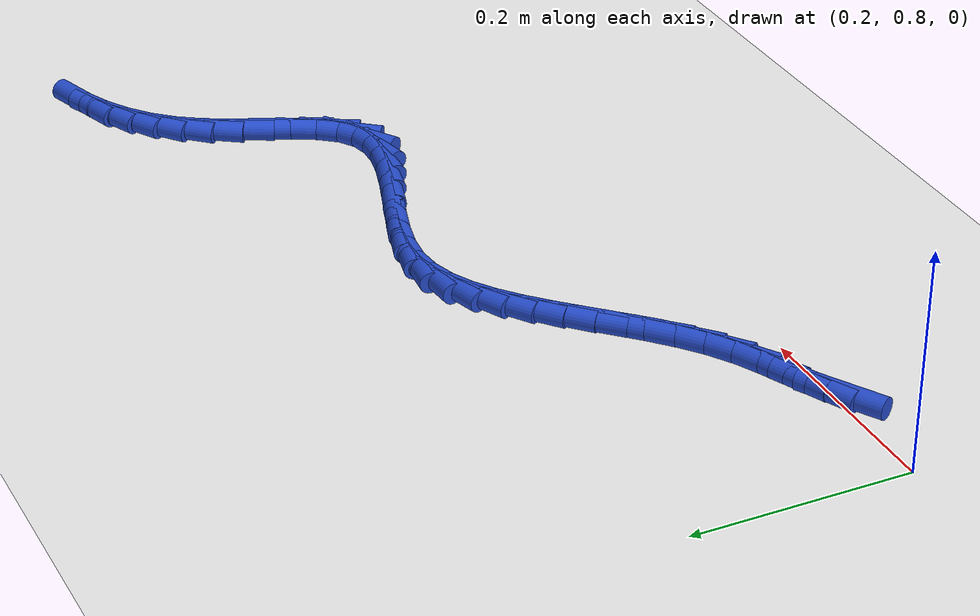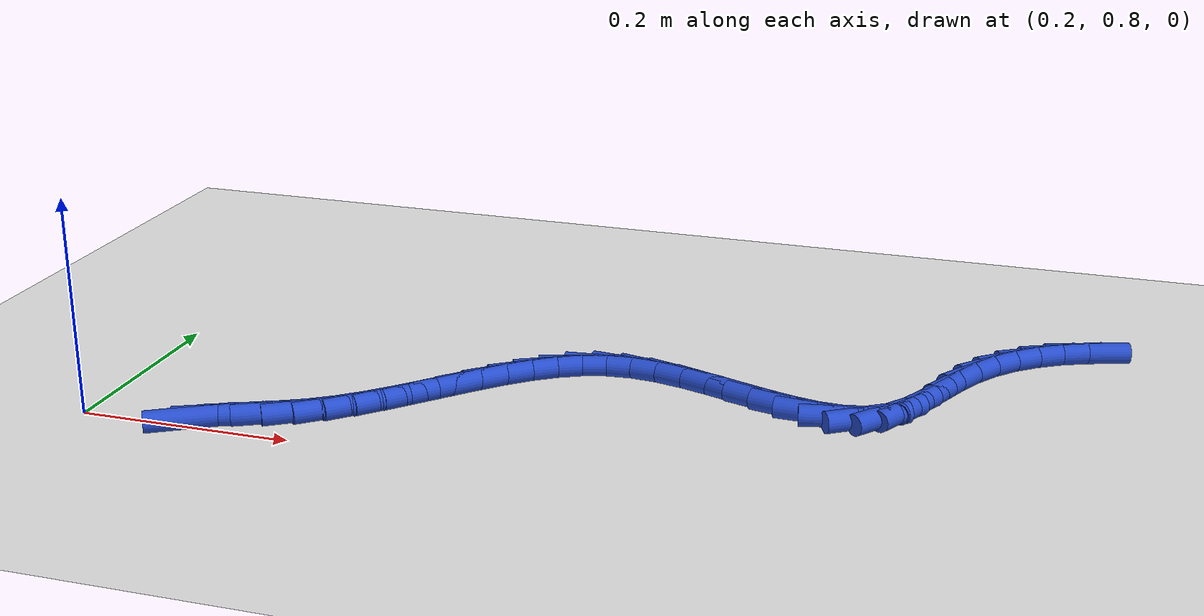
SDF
<sdf version="1.6">
 <world name="default">
  <model name="ground_plane">
   <static>1</static>
   <link name="link">
    <collision name="collision">
     <geometry><plane><normal>0 0 1</normal><size>100 100</size></plane></geometry>
     <surface><friction><ode><mu>100</mu><mu2>50</mu2></ode></friction></surface>
    </collision>
    <visual name="visual">
     <cast_shadows>0</cast_shadows>
     <geometry><plane><normal>0 0 1</normal><size>100 100</size></plane></geometry>
     <material>
      <script><uri>file://media/materials/scripts/gazebo.material</uri><name>Gazebo/WhiteGlow</name></script>
     </material>
    </visual>
   </link>
  </model>
  <model name="line">
   <link name="link_34">
    <pose>0.3070105245471767 0.7990183306296086 0.01 0 1.57 0.5382947942533804</pose>
    <collision name="collision">
     <geometry><cylinder><radius>0.01</radius><length>0.08</length></cylinder></geometry>
    </collision>
    <visual name="visual">
     <material>
      <script><name>Gazebo/Blue</name><uri>file://media/materials/scripts/gazebo.material</uri></script>
     </material>
     <geometry><cylinder><radius>0.01</radius><length>0.08</length></cylinder></geometry>
    </visual>
   </link>
   <link name="link_35">
    <pose>0.32791731947973674 0.8115020721369399 0.01 0 1.57 0.43880305395550334</pose>
    <collision name="collision">
     <geometry><cylinder><radius>0.01</radius><length>0.08</length></cylinder></geometry>
    </collision>
    <visual name="visual">
     <material>
      <script><name>Gazebo/Blue</name><uri>file://media/materials/scripts/gazebo.material</uri></script>
     </material>
     <geometry><cylinder><radius>0.01</radius><length>0.08</length></cylinder></geometry>
    </visual>
   </link>
   <link name="link_36">
    <pose>0.35064404672669786 0.8221681597628778 0.01 0 1.57 0.4179271606563806</pose>
    <collision name="collision">
     <geometry><cylinder><radius>0.01</radius><length>0.08</length></cylinder></geometry>
    </collision>
    <visual name="visual">
     <material>
      <script><name>Gazebo/Blue</name><uri>file://media/materials/scripts/gazebo.material</uri></script>
     </material>
     <geometry><cylinder><radius>0.01</radius><length>0.08</length></cylinder></geometry>
    </visual>
   </link>
   <link name="link_37">
    <pose>0.37413396841889707 0.8325997667291463 0.01 0 1.57 0.4708246415328438</pose>
    <collision name="collision">
     <geometry><cylinder><radius>0.01</radius><length>0.08</length></cylinder></geometry>
    </collision>
    <visual name="visual">
     <material>
      <script><name>Gazebo/Blue</name><uri>file://media/materials/scripts/gazebo.material</uri></script>
     </material>
     <geometry><cylinder><radius>0.01</radius><length>0.08</length></cylinder></geometry>
    </visual>
   </link>
   <link name="link_38">
    <pose>0.39731648077785475 0.8443997525790474 0.01 0 1.57 0.5822093859039558</pose>
    <collision name="collision">
     <geometry><cylinder><radius>0.01</radius><length>0.08</length></cylinder></geometry>
    </collision>
    <visual name="visual">
     <material>
      <script><name>Gazebo/Blue</name><uri>file://media/materials/scripts/gazebo.material</uri></script>
     </material>
     <geometry><cylinder><radius>0.01</radius><length>0.08</length></cylinder></geometry>
    </visual>
   </link>
   <link name="link_39">
    <pose>0.41929680986111373 0.8588700799174293 0.01 0 1.57 0.6832533506091669</pose>
    <collision name="collision">
     <geometry><cylinder><radius>0.01</radius><length>0.08</length></cylinder></geometry>
    </collision>
    <visual name="visual">
     <material>
      <script><name>Gazebo/Blue</name><uri>file://media/materials/scripts/gazebo.material</uri></script>
     </material>
     <geometry><cylinder><radius>0.01</radius><length>0.08</length></cylinder></geometry>
    </visual>
   </link>
   <link name="link_40">
    <pose>0.44007369854116846 0.8757836393772874 0.01 0 1.57 0.7539764289823443</pose>
    <collision name="collision">
     <geometry><cylinder><radius>0.01</radius><length>0.08</length></cylinder></geometry>
    </collision>
    <visual name="visual">
     <material>
      <script><name>Gazebo/Blue</name><uri>file://media/materials/scripts/gazebo.material</uri></script>
     </material>
     <geometry><cylinder><radius>0.01</radius><length>0.08</length></cylinder></geometry>
    </visual>
   </link>
   <link name="link_41">
    <pose>0.4599290167788269 0.8944288072680271 0.01 0 1.57 0.7969516579210766</pose>
    <collision name="collision">
     <geometry><cylinder><radius>0.01</radius><length>0.08</length></cylinder></geometry>
    </collision>
    <visual name="visual">
     <material>
      <script><name>Gazebo/Blue</name><uri>file://media/materials/scripts/gazebo.material</uri></script>
     </material>
     <geometry><cylinder><radius>0.01</radius><length>0.08</length></cylinder></geometry>
    </visual>
   </link>
   <link name="link_42">
    <pose>0.47914474778315613 0.9140937660977345 0.01 0 1.57 0.8140993935547778</pose>
    <collision name="collision">
     <geometry><cylinder><radius>0.01</radius><length>0.08</length></cylinder></geometry>
    </collision>
    <visual name="visual">
     <material>
      <script><name>Gazebo/Blue</name><uri>file://media/materials/scripts/gazebo.material</uri></script>
     </material>
     <geometry><cylinder><radius>0.01</radius><length>0.08</length></cylinder></geometry>
    </visual>
   </link>
   <link name="link_43">
    <pose>0.4980028747632227 0.9340666983744943 0.01 0 1.57 0.8059050501442396</pose>
    <collision name="collision">
     <geometry><cylinder><radius>0.01</radius><length>0.08</length></cylinder></geometry>
    </collision>
    <visual name="visual">
     <material>
      <script><name>Gazebo/Blue</name><uri>file://media/materials/scripts/gazebo.material</uri></script>
     </material>
     <geometry><cylinder><radius>0.01</radius><length>0.08</length></cylinder></geometry>
    </visual>
   </link>
   <link name="link_44">
    <pose>0.5167853809280936 0.9536357866063925 0.01 0 1.57 0.7710986829664985</pose>
    <collision name="collision">
     <geometry><cylinder><radius>0.01</radius><length>0.08</length></cylinder></geometry>
    </collision>
    <visual name="visual">
     <material>
      <script><name>Gazebo/Blue</name><uri>file://media/materials/scripts/gazebo.material</uri></script>
     </material>
     <geometry><cylinder><radius>0.01</radius><length>0.08</length></cylinder></geometry>
    </visual>
   </link>
   <link name="link_45">
    <pose>0.5357742494868358 0.9720892133015147 0.01 0 1.57 0.706586211054229</pose>
    <collision name="collision">
     <geometry><cylinder><radius>0.01</radius><length>0.08</length></cylinder></geometry>
    </collision>
    <visual name="visual">
     <material>
      <script><name>Gazebo/Blue</name><uri>file://media/materials/scripts/gazebo.material</uri></script>
     </material>
     <geometry><cylinder><radius>0.01</radius><length>0.08</length></cylinder></geometry>
    </visual>
   </link>
   <link name="link_46">
    <pose>0.5552514636485159 0.9887151609679462 0.01 0 1.57 0.6078487183160051</pose>
    <collision name="collision">
     <geometry><cylinder><radius>0.01</radius><length>0.08</length></cylinder></geometry>
    </collision>
    <visual name="visual">
     <material>
      <script><name>Gazebo/Blue</name><uri>file://media/materials/scripts/gazebo.material</uri></script>
     </material>
     <geometry><cylinder><radius>0.01</radius><length>0.08</length></cylinder></geometry>
    </visual>
   </link>
   <link name="link_47">
    <pose>0.5754990066222009 1.002801812113773 0.01 0 1.57 0.47059458351835903</pose>
    <collision name="collision">
     <geometry><cylinder><radius>0.01</radius><length>0.08</length></cylinder></geometry>
    </collision>
    <visual name="visual">
     <material>
      <script><name>Gazebo/Blue</name><uri>file://media/materials/scripts/gazebo.material</uri></script>
     </material>
     <geometry><cylinder><radius>0.01</radius><length>0.08</length></cylinder></geometry>
    </visual>
   </link>
   <link name="link_48">
    <pose>0.5967988616169575 1.01363734924708 0.01 0 1.57 0.2947917670698464</pose>
    <collision name="collision">
     <geometry><cylinder><radius>0.01</radius><length>0.08</length></cylinder></geometry>
    </collision>
    <visual name="visual">
     <material>
      <script><name>Gazebo/Blue</name><uri>file://media/materials/scripts/gazebo.material</uri></script>
     </material>
     <geometry><cylinder><radius>0.01</radius><length>0.08</length></cylinder></geometry>
    </visual>
   </link>
   <link name="link_49">
    <pose>0.6194330118418525 1.020509954875953 0.01 0 1.57 0.09048260221825627</pose>
    <collision name="collision">
     <geometry><cylinder><radius>0.01</radius><length>0.08</length></cylinder></geometry>
    </collision>
    <visual name="visual">
     <material>
      <script><name>Gazebo/Blue</name><uri>file://media/materials/scripts/gazebo.material</uri></script>
     </material>
     <geometry><cylinder><radius>0.01</radius><length>0.08</length></cylinder></geometry>
    </visual>
   </link>
   <link name="link_50">
    <pose>0.6436824839115431 1.022710117809935 0.01 0 1.57 -0.10090945656496318</pose>
    <collision name="collision">
     <geometry><cylinder><radius>0.01</radius><length>0.08</length></cylinder></geometry>
    </collision>
    <visual name="visual">
     <material>
      <script><name>Gazebo/Blue</name><uri>file://media/materials/scripts/gazebo.material</uri></script>
     </material>
     <geometry><cylinder><radius>0.01</radius><length>0.08</length></cylinder></geometry>
    </visual>
   </link>
   <link name="link_51">
    <pose>0.6695969153876722 1.0200861943360138 0.01 0 1.57 -0.22910706704701023</pose>
    <collision name="collision">
     <geometry><cylinder><radius>0.01</radius><length>0.08</length></cylinder></geometry>
    </collision>
    <visual name="visual">
     <material>
      <script><name>Gazebo/Blue</name><uri>file://media/materials/scripts/gazebo.material</uri></script>
     </material>
     <geometry><cylinder><radius>0.01</radius><length>0.08</length></cylinder></geometry>
    </visual>
   </link>
   <link name="link_52">
    <pose>0.6966948825329233 1.0137669030718892 0.01 0 1.57 -0.3042871475545219</pose>
    <collision name="collision">
     <geometry><cylinder><radius>0.01</radius><length>0.08</length></cylinder></geometry>
    </collision>
    <visual name="visual">
     <material>
      <script><name>Gazebo/Blue</name><uri>file://media/materials/scripts/gazebo.material</uri></script>
     </material>
     <geometry><cylinder><radius>0.01</radius><length>0.08</length></cylinder></geometry>
    </visual>
   </link>
   <link name="link_53">
    <pose>0.7244207541022027 1.0050598732389897 0.01 0 1.57 -0.33852561083776095</pose>
    <collision name="collision">
     <geometry><cylinder><radius>0.01</radius><length>0.08</length></cylinder></geometry>
    </collision>
    <visual name="visual">
     <material>
      <script><name>Gazebo/Blue</name><uri>file://media/materials/scripts/gazebo.material</uri></script>
     </material>
     <geometry><cylinder><radius>0.01</radius><length>0.08</length></cylinder></geometry>
    </visual>
   </link>
   <link name="link_54">
    <pose>0.7522188988504166 0.9952727340587431 0.01 0 1.57 -0.3366566843344308</pose>
    <collision name="collision">
     <geometry><cylinder><radius>0.01</radius><length>0.08</length></cylinder></geometry>
    </collision>
    <visual name="visual">
     <material>
      <script><name>Gazebo/Blue</name><uri>file://media/materials/scripts/gazebo.material</uri></script>
     </material>
     <geometry><cylinder><radius>0.01</radius><length>0.08</length></cylinder></geometry>
    </visual>
   </link>
   <link name="link_55">
    <pose>0.7795336855324717 0.9857131147525774 0.01 0 1.57 -0.29639801965976714</pose>
    <collision name="collision">
     <geometry><cylinder><radius>0.01</radius><length>0.08</length></cylinder></geometry>
    </collision>
    <visual name="visual">
     <material>
      <script><name>Gazebo/Blue</name><uri>file://media/materials/scripts/gazebo.material</uri></script>
     </material>
     <geometry><cylinder><radius>0.01</radius><length>0.08</length></cylinder></geometry>
    </visual>
   </link>
   <link name="link_56">
    <pose>0.8058094829032749 0.9776886445419211 0.01 0 1.57 -0.20693960312782025</pose>
    <collision name="collision">
     <geometry><cylinder><radius>0.01</radius><length>0.08</length></cylinder></geometry>
    </collision>
    <visual name="visual">
     <material>
      <script><name>Gazebo/Blue</name><uri>file://media/materials/scripts/gazebo.material</uri></script>
     </material>
     <geometry><cylinder><radius>0.01</radius><length>0.08</length></cylinder></geometry>
    </visual>
   </link>
   <link name="link_57">
    <pose>0.8304906597177322 0.9725069526482022 0.01 0 1.57 -0.045740024165443136</pose>
    <collision name="collision">
     <geometry><cylinder><radius>0.01</radius><length>0.08</length></cylinder></geometry>
    </collision>
    <visual name="visual">
     <material>
      <script><name>Gazebo/Blue</name><uri>file://media/materials/scripts/gazebo.material</uri></script>
     </material>
     <geometry><cylinder><radius>0.01</radius><length>0.08</length></cylinder></geometry>
    </visual>
   </link>
   <link name="link_58">
    <pose>0.8530215847307502 0.971475668292849 0.01 0 1.57 0.2196871473846764</pose>
    <collision name="collision">
     <geometry><cylinder><radius>0.01</radius><length>0.08</length></cylinder></geometry>
    </collision>
    <visual name="visual">
     <material>
      <script><name>Gazebo/Blue</name><uri>file://media/materials/scripts/gazebo.material</uri></script>
     </material>
     <geometry><cylinder><radius>0.01</radius><length>0.08</length></cylinder></geometry>
    </visual>
   </link>
   <link name="link_59">
    <pose>0.8728466266972352 0.9759024206972896 0.01 0 1.57 0.5904128418060222</pose>
    <collision name="collision">
     <geometry><cylinder><radius>0.01</radius><length>0.08</length></cylinder></geometry>
    </collision>
    <visual name="visual">
     <material>
      <script><name>Gazebo/Blue</name><uri>file://media/materials/scripts/gazebo.material</uri></script>
     </material>
     <geometry><cylinder><radius>0.01</radius><length>0.08</length></cylinder></geometry>
    </visual>
   </link>
   <link name="link_60">
    <pose>0.8894455877368677 0.9870262763817774 0.01 0 1.57 0.9096011142544163</pose>
    <collision name="collision">
     <geometry><cylinder><radius>0.01</radius><length>0.08</length></cylinder></geometry>
    </collision>
    <visual name="visual">
     <material>
      <script><name>Gazebo/Blue</name><uri>file://media/materials/scripts/gazebo.material</uri></script>
     </material>
     <geometry><cylinder><radius>0.01</radius><length>0.08</length></cylinder></geometry>
    </visual>
   </link>
   <link name="link_61">
    <pose>0.9030871226602335 1.0045598910482978 0.01 0 1.57 1.0839991079166227</pose>
    <collision name="collision">
     <geometry><cylinder><radius>0.01</radius><length>0.08</length></cylinder></geometry>
    </collision>
    <visual name="visual">
     <material>
      <script><name>Gazebo/Blue</name><uri>file://media/materials/scripts/gazebo.material</uri></script>
     </material>
     <geometry><cylinder><radius>0.01</radius><length>0.08</length></cylinder></geometry>
    </visual>
   </link>
   <link name="link_62">
    <pose>0.9148144979090209 1.026717065685785 0.01 0 1.57 1.1590074510101607</pose>
    <collision name="collision">
     <geometry><cylinder><radius>0.01</radius><length>0.08</length></cylinder></geometry>
    </collision>
    <visual name="visual">
     <material>
      <script><name>Gazebo/Blue</name><uri>file://media/materials/scripts/gazebo.material</uri></script>
     </material>
     <geometry><cylinder><radius>0.01</radius><length>0.08</length></cylinder></geometry>
    </visual>
   </link>
   <link name="link_63">
    <pose>0.9257035647813951 1.0516485503764412 0.01 0 1.57 1.1644275357256617</pose>
    <collision name="collision">
     <geometry><cylinder><radius>0.01</radius><length>0.08</length></cylinder></geometry>
    </collision>
    <visual name="visual">
     <material>
      <script><name>Gazebo/Blue</name><uri>file://media/materials/scripts/gazebo.material</uri></script>
     </material>
     <geometry><cylinder><radius>0.01</radius><length>0.08</length></cylinder></geometry>
    </visual>
   </link>
   <link name="link_64">
    <pose>0.9368301745755226 1.0775050952024687 0.01 0 1.57 1.1079888950414456</pose>
    <collision name="collision">
     <geometry><cylinder><radius>0.01</radius><length>0.08</length></cylinder></geometry>
    </collision>
    <visual name="visual">
     <material>
      <script><name>Gazebo/Blue</name><uri>file://media/materials/scripts/gazebo.material</uri></script>
     </material>
     <geometry><cylinder><radius>0.01</radius><length>0.08</length></cylinder></geometry>
    </visual>
   </link>
   <link name="link_65">
    <pose>0.9492701785895689 1.1024374502460692 0.01 0 1.57 0.9866092341428063</pose>
    <collision name="collision">
     <geometry><cylinder><radius>0.01</radius><length>0.08</length></cylinder></geometry>
    </collision>
    <visual name="visual">
     <material>
      <script><name>Gazebo/Blue</name><uri>file://media/materials/scripts/gazebo.material</uri></script>
     </material>
     <geometry><cylinder><radius>0.01</radius><length>0.08</length></cylinder></geometry>
    </visual>
   </link>
   <link name="link_66">
    <pose>0.9640104831739069 1.1247317459999717 0.01 0 1.57 0.8384691981079193</pose>
    <collision name="collision">
     <geometry><cylinder><radius>0.01</radius><length>0.08</length></cylinder></geometry>
    </collision>
    <visual name="visual">
     <material>
      <script><name>Gazebo/Blue</name><uri>file://media/materials/scripts/gazebo.material</uri></script>
     </material>
     <geometry><cylinder><radius>0.01</radius><length>0.08</length></cylinder></geometry>
    </visual>
   </link>
   <link name="link_67">
    <pose>0.9812378231117642 1.1438920298587738 0.01 0 1.57 0.6930118332962242</pose>
    <collision name="collision">
     <geometry><cylinder><radius>0.01</radius><length>0.08</length></cylinder></geometry>
    </collision>
    <visual name="visual">
     <material>
      <script><name>Gazebo/Blue</name><uri>file://media/materials/scripts/gazebo.material</uri></script>
     </material>
     <geometry><cylinder><radius>0.01</radius><length>0.08</length></cylinder></geometry>
    </visual>
   </link>
   <link name="link_68">
    <pose>1.000715633570668 1.1600666407386453 0.01 0 1.57 0.5556899170895744</pose>
    <collision name="collision">
     <geometry><cylinder><radius>0.01</radius><length>0.08</length></cylinder></geometry>
    </collision>
    <visual name="visual">
     <material>
      <script><name>Gazebo/Blue</name><uri>file://media/materials/scripts/gazebo.material</uri></script>
     </material>
     <geometry><cylinder><radius>0.01</radius><length>0.08</length></cylinder></geometry>
    </visual>
   </link>
   <link name="link_69">
    <pose>1.0222034998393403 1.1734097773396532 0.01 0 1.57 0.42998149815365205</pose>
    <collision name="collision">
     <geometry><cylinder><radius>0.01</radius><length>0.08</length></cylinder></geometry>
    </collision>
    <visual name="visual">
     <material>
      <script><name>Gazebo/Blue</name><uri>file://media/materials/scripts/gazebo.material</uri></script>
     </material>
     <geometry><cylinder><radius>0.01</radius><length>0.08</length></cylinder></geometry>
    </visual>
   </link>
   <link name="link_70">
    <pose>1.0454610072065047 1.1840756383618658 0.01 0 1.57 0.3174067228604865</pose>
    <collision name="collision">
     <geometry><cylinder><radius>0.01</radius><length>0.08</length></cylinder></geometry>
    </collision>
    <visual name="visual">
     <material>
      <script><name>Gazebo/Blue</name><uri>file://media/materials/scripts/gazebo.material</uri></script>
     </material>
     <geometry><cylinder><radius>0.01</radius><length>0.08</length></cylinder></geometry>
    </visual>
   </link>
  </model>
 </world>
</sdf>
